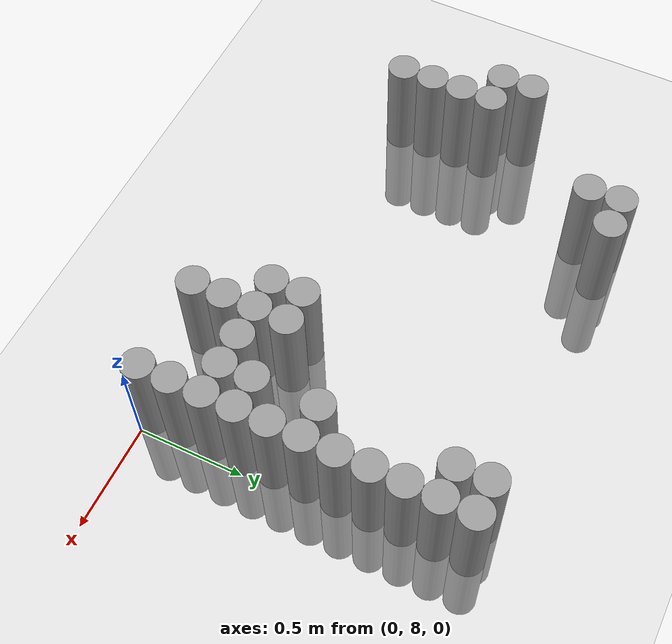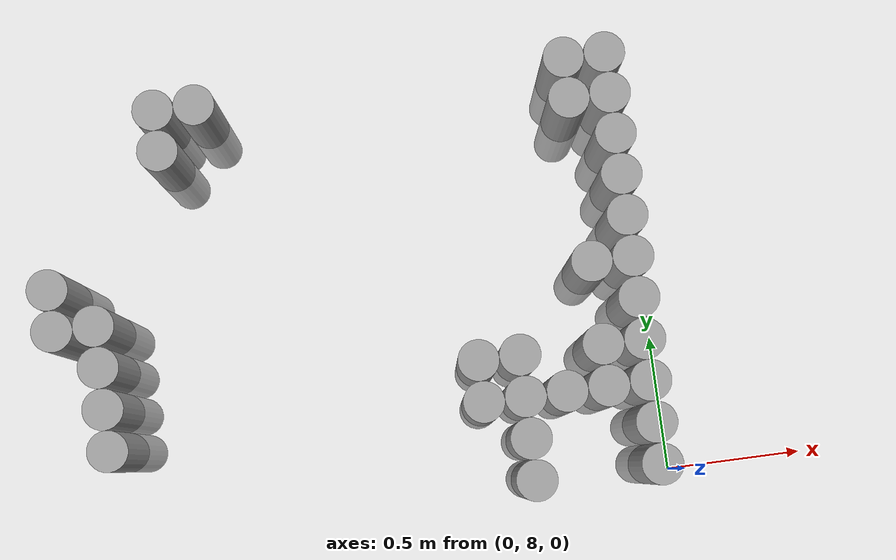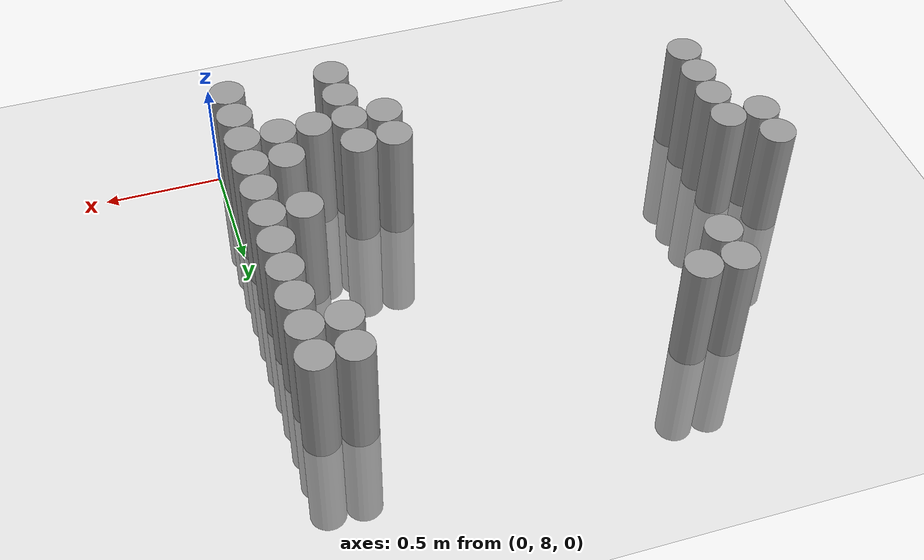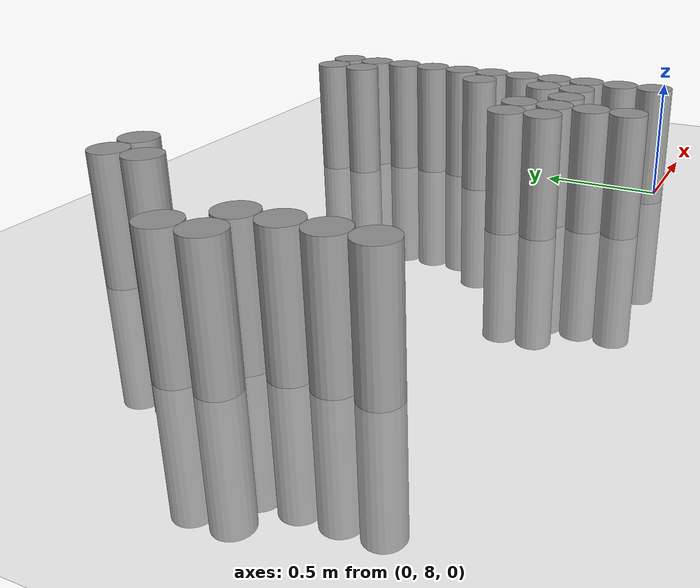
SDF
<sdf version="1.6">
 <world name="default">
  <model name="ground_plane">
   <static>1</static>
   <static>1</static>
   <link name="link">
    <collision name="collision">
     <geometry><plane><normal>0 0 1</normal><size>100 100</size></plane></geometry>
     <surface><friction><ode><mu>100</mu><mu2>50</mu2></ode></friction></surface>
    </collision>
    <visual name="visual">
     <cast_shadows>0</cast_shadows>
     <geometry><plane><normal>0 0 1</normal><size>100 100</size></plane></geometry>
     <material>
      <script><uri>file://media/materials/scripts/gazebo.material</uri><name>Gazebo/Grey</name></script>
     </material>
    </visual>
   </link>
  </model>
  <model name="unit_cylinder_183">
   <static>1</static>
   <pose>-2.175000 8.775000 0.000000 0.000000 0.000000 0.000000</pose>
   <link name="link">
    <inertial>
     <mass>1</mass>
     <inertia><ixx>0.145833</ixx><ixy>0</ixy><ixz>0</ixz><iyy>0.145833</iyy><iyz>0</iyz><izz>0.125</izz></inertia>
    </inertial>
    <collision name="collision">
     <geometry><cylinder><radius>0.075000</radius><length>1</length></cylinder></geometry>
    </collision>
    <visual name="visual">
     <geometry><cylinder><radius>0.075000</radius><length>1</length></cylinder></geometry>
     <material>
      <script><name>Gazebo/Grey</name><uri>file://media/materials/scripts/gazebo.material</uri></script>
     </material>
    </visual>
   </link>
  </model>
  <model name="unit_cylinder_184">
   <static>1</static>
   <pose>-2.175000 8.925000 0.000000 0.000000 0.000000 0.000000</pose>
   <link name="link">
    <inertial>
     <mass>1</mass>
     <inertia><ixx>0.145833</ixx><ixy>0</ixy><ixz>0</ixz><iyy>0.145833</iyy><iyz>0</iyz><izz>0.125</izz></inertia>
    </inertial>
    <collision name="collision">
     <geometry><cylinder><radius>0.075000</radius><length>1</length></cylinder></geometry>
    </collision>
    <visual name="visual">
     <geometry><cylinder><radius>0.075000</radius><length>1</length></cylinder></geometry>
     <material>
      <script><name>Gazebo/Grey</name><uri>file://media/materials/scripts/gazebo.material</uri></script>
     </material>
    </visual>
   </link>
  </model>
  <model name="unit_cylinder_185">
   <static>1</static>
   <pose>-2.025000 8.325000 0.000000 0.000000 0.000000 0.000000</pose>
   <link name="link">
    <inertial>
     <mass>1</mass>
     <inertia><ixx>0.145833</ixx><ixy>0</ixy><ixz>0</ixz><iyy>0.145833</iyy><iyz>0</iyz><izz>0.125</izz></inertia>
    </inertial>
    <collision name="collision">
     <geometry><cylinder><radius>0.075000</radius><length>1</length></cylinder></geometry>
    </collision>
    <visual name="visual">
     <geometry><cylinder><radius>0.075000</radius><length>1</length></cylinder></geometry>
     <material>
      <script><name>Gazebo/Grey</name><uri>file://media/materials/scripts/gazebo.material</uri></script>
     </material>
    </visual>
   </link>
  </model>
  <model name="unit_cylinder_186">
   <static>1</static>
   <pose>-2.025000 8.475000 0.000000 0.000000 0.000000 0.000000</pose>
   <link name="link">
    <inertial>
     <mass>1</mass>
     <inertia><ixx>0.145833</ixx><ixy>0</ixy><ixz>0</ixz><iyy>0.145833</iyy><iyz>0</iyz><izz>0.125</izz></inertia>
    </inertial>
    <collision name="collision">
     <geometry><cylinder><radius>0.075000</radius><length>1</length></cylinder></geometry>
    </collision>
    <visual name="visual">
     <geometry><cylinder><radius>0.075000</radius><length>1</length></cylinder></geometry>
     <material>
      <script><name>Gazebo/Grey</name><uri>file://media/materials/scripts/gazebo.material</uri></script>
     </material>
    </visual>
   </link>
  </model>
  <model name="unit_cylinder_187">
   <static>1</static>
   <pose>-2.025000 8.625000 0.000000 0.000000 0.000000 0.000000</pose>
   <link name="link">
    <inertial>
     <mass>1</mass>
     <inertia><ixx>0.145833</ixx><ixy>0</ixy><ixz>0</ixz><iyy>0.145833</iyy><iyz>0</iyz><izz>0.125</izz></inertia>
    </inertial>
    <collision name="collision">
     <geometry><cylinder><radius>0.075000</radius><length>1</length></cylinder></geometry>
    </collision>
    <visual name="visual">
     <geometry><cylinder><radius>0.075000</radius><length>1</length></cylinder></geometry>
     <material>
      <script><name>Gazebo/Grey</name><uri>file://media/materials/scripts/gazebo.material</uri></script>
     </material>
    </visual>
   </link>
  </model>
  <model name="unit_cylinder_188">
   <static>1</static>
   <pose>-2.025000 8.775000 0.000000 0.000000 0.000000 0.000000</pose>
   <link name="link">
    <inertial>
     <mass>1</mass>
     <inertia><ixx>0.145833</ixx><ixy>0</ixy><ixz>0</ixz><iyy>0.145833</iyy><iyz>0</iyz><izz>0.125</izz></inertia>
    </inertial>
    <collision name="collision">
     <geometry><cylinder><radius>0.075000</radius><length>1</length></cylinder></geometry>
    </collision>
    <visual name="visual">
     <geometry><cylinder><radius>0.075000</radius><length>1</length></cylinder></geometry>
     <material>
      <script><name>Gazebo/Grey</name><uri>file://media/materials/scripts/gazebo.material</uri></script>
     </material>
    </visual>
   </link>
  </model>
  <model name="unit_cylinder_190">
   <static>1</static>
   <pose>-1.725000 9.375000 0.000000 0.000000 0.000000 0.000000</pose>
   <link name="link">
    <inertial>
     <mass>1</mass>
     <inertia><ixx>0.145833</ixx><ixy>0</ixy><ixz>0</ixz><iyy>0.145833</iyy><iyz>0</iyz><izz>0.125</izz></inertia>
    </inertial>
    <collision name="collision">
     <geometry><cylinder><radius>0.075000</radius><length>1</length></cylinder></geometry>
    </collision>
    <visual name="visual">
     <geometry><cylinder><radius>0.075000</radius><length>1</length></cylinder></geometry>
     <material>
      <script><name>Gazebo/Grey</name><uri>file://media/materials/scripts/gazebo.material</uri></script>
     </material>
    </visual>
   </link>
  </model>
  <model name="unit_cylinder_191">
   <static>1</static>
   <pose>-1.725000 9.525000 0.000000 0.000000 0.000000 0.000000</pose>
   <link name="link">
    <inertial>
     <mass>1</mass>
     <inertia><ixx>0.145833</ixx><ixy>0</ixy><ixz>0</ixz><iyy>0.145833</iyy><iyz>0</iyz><izz>0.125</izz></inertia>
    </inertial>
    <collision name="collision">
     <geometry><cylinder><radius>0.075000</radius><length>1</length></cylinder></geometry>
    </collision>
    <visual name="visual">
     <geometry><cylinder><radius>0.075000</radius><length>1</length></cylinder></geometry>
     <material>
      <script><name>Gazebo/Grey</name><uri>file://media/materials/scripts/gazebo.material</uri></script>
     </material>
    </visual>
   </link>
  </model>
  <model name="unit_cylinder_196">
   <static>1</static>
   <pose>-1.575000 9.525000 0.000000 0.000000 0.000000 0.000000</pose>
   <link name="link">
    <inertial>
     <mass>1</mass>
     <inertia><ixx>0.145833</ixx><ixy>0</ixy><ixz>0</ixz><iyy>0.145833</iyy><iyz>0</iyz><izz>0.125</izz></inertia>
    </inertial>
    <collision name="collision">
     <geometry><cylinder><radius>0.075000</radius><length>1</length></cylinder></geometry>
    </collision>
    <visual name="visual">
     <geometry><cylinder><radius>0.075000</radius><length>1</length></cylinder></geometry>
     <material>
      <script><name>Gazebo/Grey</name><uri>file://media/materials/scripts/gazebo.material</uri></script>
     </material>
    </visual>
   </link>
  </model>
  <model name="unit_cylinder_203">
   <static>1</static>
   <pose>-0.675000 8.325000 0.000000 0.000000 0.000000 0.000000</pose>
   <link name="link">
    <inertial>
     <mass>1</mass>
     <inertia><ixx>0.145833</ixx><ixy>0</ixy><ixz>0</ixz><iyy>0.145833</iyy><iyz>0</iyz><izz>0.125</izz></inertia>
    </inertial>
    <collision name="collision">
     <geometry><cylinder><radius>0.075000</radius><length>1</length></cylinder></geometry>
    </collision>
    <visual name="visual">
     <geometry><cylinder><radius>0.075000</radius><length>1</length></cylinder></geometry>
     <material>
      <script><name>Gazebo/Grey</name><uri>file://media/materials/scripts/gazebo.material</uri></script>
     </material>
    </visual>
   </link>
  </model>
  <model name="unit_cylinder_204">
   <static>1</static>
   <pose>-0.675000 8.475000 0.000000 0.000000 0.000000 0.000000</pose>
   <link name="link">
    <inertial>
     <mass>1</mass>
     <inertia><ixx>0.145833</ixx><ixy>0</ixy><ixz>0</ixz><iyy>0.145833</iyy><iyz>0</iyz><izz>0.125</izz></inertia>
    </inertial>
    <collision name="collision">
     <geometry><cylinder><radius>0.075000</radius><length>1</length></cylinder></geometry>
    </collision>
    <visual name="visual">
     <geometry><cylinder><radius>0.075000</radius><length>1</length></cylinder></geometry>
     <material>
      <script><name>Gazebo/Grey</name><uri>file://media/materials/scripts/gazebo.material</uri></script>
     </material>
    </visual>
   </link>
  </model>
  <model name="unit_cylinder_208">
   <static>1</static>
   <pose>-0.525000 8.025000 0.000000 0.000000 0.000000 0.000000</pose>
   <link name="link">
    <inertial>
     <mass>1</mass>
     <inertia><ixx>0.145833</ixx><ixy>0</ixy><ixz>0</ixz><iyy>0.145833</iyy><iyz>0</iyz><izz>0.125</izz></inertia>
    </inertial>
    <collision name="collision">
     <geometry><cylinder><radius>0.075000</radius><length>1</length></cylinder></geometry>
    </collision>
    <visual name="visual">
     <geometry><cylinder><radius>0.075000</radius><length>1</length></cylinder></geometry>
     <material>
      <script><name>Gazebo/Grey</name><uri>file://media/materials/scripts/gazebo.material</uri></script>
     </material>
    </visual>
   </link>
  </model>
  <model name="unit_cylinder_209">
   <static>1</static>
   <pose>-0.525000 8.175000 0.000000 0.000000 0.000000 0.000000</pose>
   <link name="link">
    <inertial>
     <mass>1</mass>
     <inertia><ixx>0.145833</ixx><ixy>0</ixy><ixz>0</ixz><iyy>0.145833</iyy><iyz>0</iyz><izz>0.125</izz></inertia>
    </inertial>
    <collision name="collision">
     <geometry><cylinder><radius>0.075000</radius><length>1</length></cylinder></geometry>
    </collision>
    <visual name="visual">
     <geometry><cylinder><radius>0.075000</radius><length>1</length></cylinder></geometry>
     <material>
      <script><name>Gazebo/Grey</name><uri>file://media/materials/scripts/gazebo.material</uri></script>
     </material>
    </visual>
   </link>
  </model>
  <model name="unit_cylinder_210">
   <static>1</static>
   <pose>-0.525000 8.325000 0.000000 0.000000 0.000000 0.000000</pose>
   <link name="link">
    <inertial>
     <mass>1</mass>
     <inertia><ixx>0.145833</ixx><ixy>0</ixy><ixz>0</ixz><iyy>0.145833</iyy><iyz>0</iyz><izz>0.125</izz></inertia>
    </inertial>
    <collision name="collision">
     <geometry><cylinder><radius>0.075000</radius><length>1</length></cylinder></geometry>
    </collision>
    <visual name="visual">
     <geometry><cylinder><radius>0.075000</radius><length>1</length></cylinder></geometry>
     <material>
      <script><name>Gazebo/Grey</name><uri>file://media/materials/scripts/gazebo.material</uri></script>
     </material>
    </visual>
   </link>
  </model>
  <model name="unit_cylinder_211">
   <static>1</static>
   <pose>-0.525000 8.475000 0.000000 0.000000 0.000000 0.000000</pose>
   <link name="link">
    <inertial>
     <mass>1</mass>
     <inertia><ixx>0.145833</ixx><ixy>0</ixy><ixz>0</ixz><iyy>0.145833</iyy><iyz>0</iyz><izz>0.125</izz></inertia>
    </inertial>
    <collision name="collision">
     <geometry><cylinder><radius>0.075000</radius><length>1</length></cylinder></geometry>
    </collision>
    <visual name="visual">
     <geometry><cylinder><radius>0.075000</radius><length>1</length></cylinder></geometry>
     <material>
      <script><name>Gazebo/Grey</name><uri>file://media/materials/scripts/gazebo.material</uri></script>
     </material>
    </visual>
   </link>
  </model>
  <model name="unit_cylinder_213">
   <static>1</static>
   <pose>-0.375000 8.325000 0.000000 0.000000 0.000000 0.000000</pose>
   <link name="link">
    <inertial>
     <mass>1</mass>
     <inertia><ixx>0.145833</ixx><ixy>0</ixy><ixz>0</ixz><iyy>0.145833</iyy><iyz>0</iyz><izz>0.125</izz></inertia>
    </inertial>
    <collision name="collision">
     <geometry><cylinder><radius>0.075000</radius><length>1</length></cylinder></geometry>
    </collision>
    <visual name="visual">
     <geometry><cylinder><radius>0.075000</radius><length>1</length></cylinder></geometry>
     <material>
      <script><name>Gazebo/Grey</name><uri>file://media/materials/scripts/gazebo.material</uri></script>
     </material>
    </visual>
   </link>
  </model>
  <model name="unit_cylinder_220">
   <static>1</static>
   <pose>-0.225000 8.325000 0.000000 0.000000 0.000000 0.000000</pose>
   <link name="link">
    <inertial>
     <mass>1</mass>
     <inertia><ixx>0.145833</ixx><ixy>0</ixy><ixz>0</ixz><iyy>0.145833</iyy><iyz>0</iyz><izz>0.125</izz></inertia>
    </inertial>
    <collision name="collision">
     <geometry><cylinder><radius>0.075000</radius><length>1</length></cylinder></geometry>
    </collision>
    <visual name="visual">
     <geometry><cylinder><radius>0.075000</radius><length>1</length></cylinder></geometry>
     <material>
      <script><name>Gazebo/Grey</name><uri>file://media/materials/scripts/gazebo.material</uri></script>
     </material>
    </visual>
   </link>
  </model>
  <model name="unit_cylinder_221">
   <static>1</static>
   <pose>-0.225000 8.475000 0.000000 0.000000 0.000000 0.000000</pose>
   <link name="link">
    <inertial>
     <mass>1</mass>
     <inertia><ixx>0.145833</ixx><ixy>0</ixy><ixz>0</ixz><iyy>0.145833</iyy><iyz>0</iyz><izz>0.125</izz></inertia>
    </inertial>
    <collision name="collision">
     <geometry><cylinder><radius>0.075000</radius><length>1</length></cylinder></geometry>
    </collision>
    <visual name="visual">
     <geometry><cylinder><radius>0.075000</radius><length>1</length></cylinder></geometry>
     <material>
      <script><name>Gazebo/Grey</name><uri>file://media/materials/scripts/gazebo.material</uri></script>
     </material>
    </visual>
   </link>
  </model>
  <model name="unit_cylinder_222">
   <static>1</static>
   <pose>-0.225000 8.775000 0.000000 0.000000 0.000000 0.000000</pose>
   <link name="link">
    <inertial>
     <mass>1</mass>
     <inertia><ixx>0.145833</ixx><ixy>0</ixy><ixz>0</ixz><iyy>0.145833</iyy><iyz>0</iyz><izz>0.125</izz></inertia>
    </inertial>
    <collision name="collision">
     <geometry><cylinder><radius>0.075000</radius><length>1</length></cylinder></geometry>
    </collision>
    <visual name="visual">
     <geometry><cylinder><radius>0.075000</radius><length>1</length></cylinder></geometry>
     <material>
      <script><name>Gazebo/Grey</name><uri>file://media/materials/scripts/gazebo.material</uri></script>
     </material>
    </visual>
   </link>
  </model>
  <model name="unit_cylinder_223">
   <static>1</static>
   <pose>-0.225000 9.375000 0.000000 0.000000 0.000000 0.000000</pose>
   <link name="link">
    <inertial>
     <mass>1</mass>
     <inertia><ixx>0.145833</ixx><ixy>0</ixy><ixz>0</ixz><iyy>0.145833</iyy><iyz>0</iyz><izz>0.125</izz></inertia>
    </inertial>
    <collision name="collision">
     <geometry><cylinder><radius>0.075000</radius><length>1</length></cylinder></geometry>
    </collision>
    <visual name="visual">
     <geometry><cylinder><radius>0.075000</radius><length>1</length></cylinder></geometry>
     <material>
      <script><name>Gazebo/Grey</name><uri>file://media/materials/scripts/gazebo.material</uri></script>
     </material>
    </visual>
   </link>
  </model>
  <model name="unit_cylinder_224">
   <static>1</static>
   <pose>-0.225000 9.525000 0.000000 0.000000 0.000000 0.000000</pose>
   <link name="link">
    <inertial>
     <mass>1</mass>
     <inertia><ixx>0.145833</ixx><ixy>0</ixy><ixz>0</ixz><iyy>0.145833</iyy><iyz>0</iyz><izz>0.125</izz></inertia>
    </inertial>
    <collision name="collision">
     <geometry><cylinder><radius>0.075000</radius><length>1</length></cylinder></geometry>
    </collision>
    <visual name="visual">
     <geometry><cylinder><radius>0.075000</radius><length>1</length></cylinder></geometry>
     <material>
      <script><name>Gazebo/Grey</name><uri>file://media/materials/scripts/gazebo.material</uri></script>
     </material>
    </visual>
   </link>
  </model>
  <model name="unit_cylinder_244">
   <static>1</static>
   <pose>-0.075000 8.025000 0.000000 0.000000 0.000000 0.000000</pose>
   <link name="link">
    <inertial>
     <mass>1</mass>
     <inertia><ixx>0.145833</ixx><ixy>0</ixy><ixz>0</ixz><iyy>0.145833</iyy><iyz>0</iyz><izz>0.125</izz></inertia>
    </inertial>
    <collision name="collision">
     <geometry><cylinder><radius>0.075000</radius><length>1</length></cylinder></geometry>
    </collision>
    <visual name="visual">
     <geometry><cylinder><radius>0.075000</radius><length>1</length></cylinder></geometry>
     <material>
      <script><name>Gazebo/Grey</name><uri>file://media/materials/scripts/gazebo.material</uri></script>
     </material>
    </visual>
   </link>
  </model>
  <model name="unit_cylinder_245">
   <static>1</static>
   <pose>-0.075000 8.175000 0.000000 0.000000 0.000000 0.000000</pose>
   <link name="link">
    <inertial>
     <mass>1</mass>
     <inertia><ixx>0.145833</ixx><ixy>0</ixy><ixz>0</ixz><iyy>0.145833</iyy><iyz>0</iyz><izz>0.125</izz></inertia>
    </inertial>
    <collision name="collision">
     <geometry><cylinder><radius>0.075000</radius><length>1</length></cylinder></geometry>
    </collision>
    <visual name="visual">
     <geometry><cylinder><radius>0.075000</radius><length>1</length></cylinder></geometry>
     <material>
      <script><name>Gazebo/Grey</name><uri>file://media/materials/scripts/gazebo.material</uri></script>
     </material>
    </visual>
   </link>
  </model>
  <model name="unit_cylinder_246">
   <static>1</static>
   <pose>-0.075000 8.325000 0.000000 0.000000 0.000000 0.000000</pose>
   <link name="link">
    <inertial>
     <mass>1</mass>
     <inertia><ixx>0.145833</ixx><ixy>0</ixy><ixz>0</ixz><iyy>0.145833</iyy><iyz>0</iyz><izz>0.125</izz></inertia>
    </inertial>
    <collision name="collision">
     <geometry><cylinder><radius>0.075000</radius><length>1</length></cylinder></geometry>
    </collision>
    <visual name="visual">
     <geometry><cylinder><radius>0.075000</radius><length>1</length></cylinder></geometry>
     <material>
      <script><name>Gazebo/Grey</name><uri>file://media/materials/scripts/gazebo.material</uri></script>
     </material>
    </visual>
   </link>
  </model>
  <model name="unit_cylinder_247">
   <static>1</static>
   <pose>-0.075000 8.475000 0.000000 0.000000 0.000000 0.000000</pose>
   <link name="link">
    <inertial>
     <mass>1</mass>
     <inertia><ixx>0.145833</ixx><ixy>0</ixy><ixz>0</ixz><iyy>0.145833</iyy><iyz>0</iyz><izz>0.125</izz></inertia>
    </inertial>
    <collision name="collision">
     <geometry><cylinder><radius>0.075000</radius><length>1</length></cylinder></geometry>
    </collision>
    <visual name="visual">
     <geometry><cylinder><radius>0.075000</radius><length>1</length></cylinder></geometry>
     <material>
      <script><name>Gazebo/Grey</name><uri>file://media/materials/scripts/gazebo.material</uri></script>
     </material>
    </visual>
   </link>
  </model>
  <model name="unit_cylinder_248">
   <static>1</static>
   <pose>-0.075000 8.625000 0.000000 0.000000 0.000000 0.000000</pose>
   <link name="link">
    <inertial>
     <mass>1</mass>
     <inertia><ixx>0.145833</ixx><ixy>0</ixy><ixz>0</ixz><iyy>0.145833</iyy><iyz>0</iyz><izz>0.125</izz></inertia>
    </inertial>
    <collision name="collision">
     <geometry><cylinder><radius>0.075000</radius><length>1</length></cylinder></geometry>
    </collision>
    <visual name="visual">
     <geometry><cylinder><radius>0.075000</radius><length>1</length></cylinder></geometry>
     <material>
      <script><name>Gazebo/Grey</name><uri>file://media/materials/scripts/gazebo.material</uri></script>
     </material>
    </visual>
   </link>
  </model>
  <model name="unit_cylinder_249">
   <static>1</static>
   <pose>-0.075000 8.775000 0.000000 0.000000 0.000000 0.000000</pose>
   <link name="link">
    <inertial>
     <mass>1</mass>
     <inertia><ixx>0.145833</ixx><ixy>0</ixy><ixz>0</ixz><iyy>0.145833</iyy><iyz>0</iyz><izz>0.125</izz></inertia>
    </inertial>
    <collision name="collision">
     <geometry><cylinder><radius>0.075000</radius><length>1</length></cylinder></geometry>
    </collision>
    <visual name="visual">
     <geometry><cylinder><radius>0.075000</radius><length>1</length></cylinder></geometry>
     <material>
      <script><name>Gazebo/Grey</name><uri>file://media/materials/scripts/gazebo.material</uri></script>
     </material>
    </visual>
   </link>
  </model>
  <model name="unit_cylinder_250">
   <static>1</static>
   <pose>-0.075000 8.925000 0.000000 0.000000 0.000000 0.000000</pose>
   <link name="link">
    <inertial>
     <mass>1</mass>
     <inertia><ixx>0.145833</ixx><ixy>0</ixy><ixz>0</ixz><iyy>0.145833</iyy><iyz>0</iyz><izz>0.125</izz></inertia>
    </inertial>
    <collision name="collision">
     <geometry><cylinder><radius>0.075000</radius><length>1</length></cylinder></geometry>
    </collision>
    <visual name="visual">
     <geometry><cylinder><radius>0.075000</radius><length>1</length></cylinder></geometry>
     <material>
      <script><name>Gazebo/Grey</name><uri>file://media/materials/scripts/gazebo.material</uri></script>
     </material>
    </visual>
   </link>
  </model>
  <model name="unit_cylinder_251">
   <static>1</static>
   <pose>-0.075000 9.075000 0.000000 0.000000 0.000000 0.000000</pose>
   <link name="link">
    <inertial>
     <mass>1</mass>
     <inertia><ixx>0.145833</ixx><ixy>0</ixy><ixz>0</ixz><iyy>0.145833</iyy><iyz>0</iyz><izz>0.125</izz></inertia>
    </inertial>
    <collision name="collision">
     <geometry><cylinder><radius>0.075000</radius><length>1</length></cylinder></geometry>
    </collision>
    <visual name="visual">
     <geometry><cylinder><radius>0.075000</radius><length>1</length></cylinder></geometry>
     <material>
      <script><name>Gazebo/Grey</name><uri>file://media/materials/scripts/gazebo.material</uri></script>
     </material>
    </visual>
   </link>
  </model>
  <model name="unit_cylinder_252">
   <static>1</static>
   <pose>-0.075000 9.225000 0.000000 0.000000 0.000000 0.000000</pose>
   <link name="link">
    <inertial>
     <mass>1</mass>
     <inertia><ixx>0.145833</ixx><ixy>0</ixy><ixz>0</ixz><iyy>0.145833</iyy><iyz>0</iyz><izz>0.125</izz></inertia>
    </inertial>
    <collision name="collision">
     <geometry><cylinder><radius>0.075000</radius><length>1</length></cylinder></geometry>
    </collision>
    <visual name="visual">
     <geometry><cylinder><radius>0.075000</radius><length>1</length></cylinder></geometry>
     <material>
      <script><name>Gazebo/Grey</name><uri>file://media/materials/scripts/gazebo.material</uri></script>
     </material>
    </visual>
   </link>
  </model>
  <model name="unit_cylinder_253">
   <static>1</static>
   <pose>-0.075000 9.375000 0.000000 0.000000 0.000000 0.000000</pose>
   <link name="link">
    <inertial>
     <mass>1</mass>
     <inertia><ixx>0.145833</ixx><ixy>0</ixy><ixz>0</ixz><iyy>0.145833</iyy><iyz>0</iyz><izz>0.125</izz></inertia>
    </inertial>
    <collision name="collision">
     <geometry><cylinder><radius>0.075000</radius><length>1</length></cylinder></geometry>
    </collision>
    <visual name="visual">
     <geometry><cylinder><radius>0.075000</radius><length>1</length></cylinder></geometry>
     <material>
      <script><name>Gazebo/Grey</name><uri>file://media/materials/scripts/gazebo.material</uri></script>
     </material>
    </visual>
   </link>
  </model>
  <model name="unit_cylinder_254">
   <static>1</static>
   <pose>-0.075000 9.525000 0.000000 0.000000 0.000000 0.000000</pose>
   <link name="link">
    <inertial>
     <mass>1</mass>
     <inertia><ixx>0.145833</ixx><ixy>0</ixy><ixz>0</ixz><iyy>0.145833</iyy><iyz>0</iyz><izz>0.125</izz></inertia>
    </inertial>
    <collision name="collision">
     <geometry><cylinder><radius>0.075000</radius><length>1</length></cylinder></geometry>
    </collision>
    <visual name="visual">
     <geometry><cylinder><radius>0.075000</radius><length>1</length></cylinder></geometry>
     <material>
      <script><name>Gazebo/Grey</name><uri>file://media/materials/scripts/gazebo.material</uri></script>
     </material>
    </visual>
   </link>
  </model>
 </world>
</sdf>
